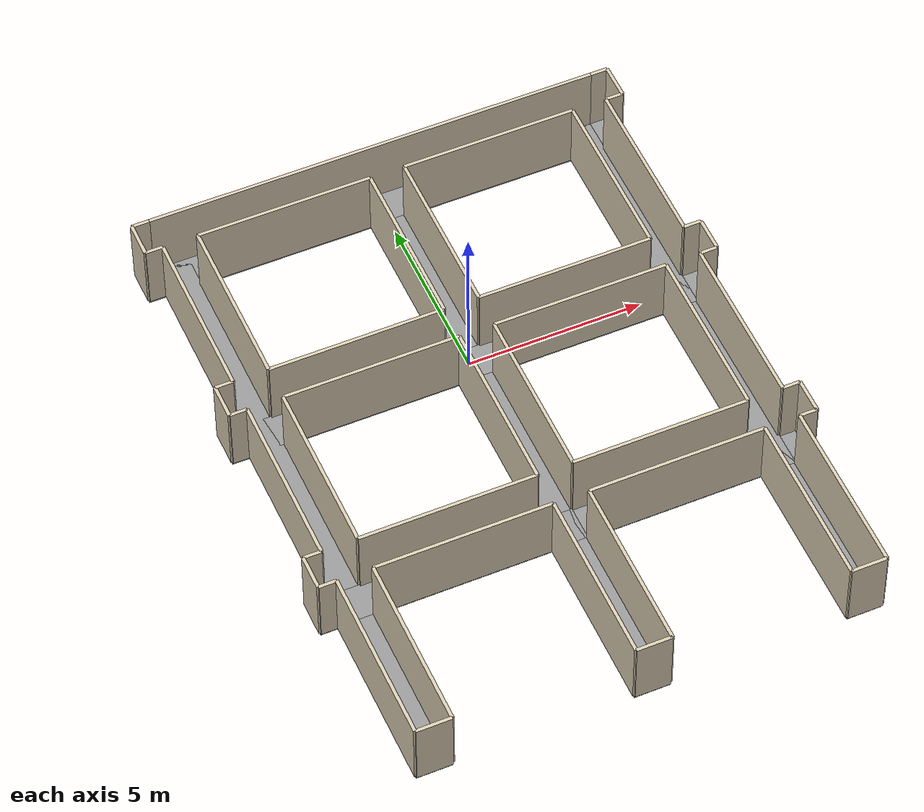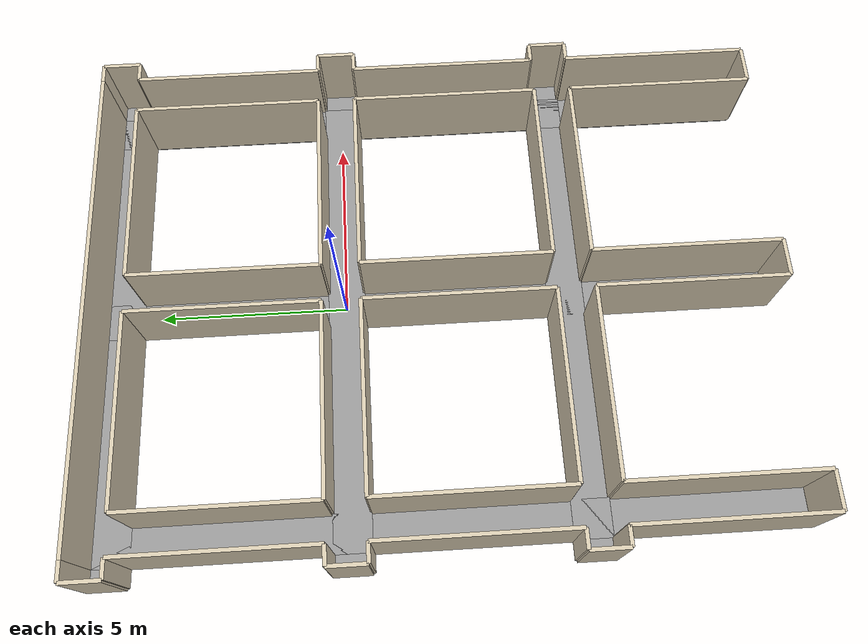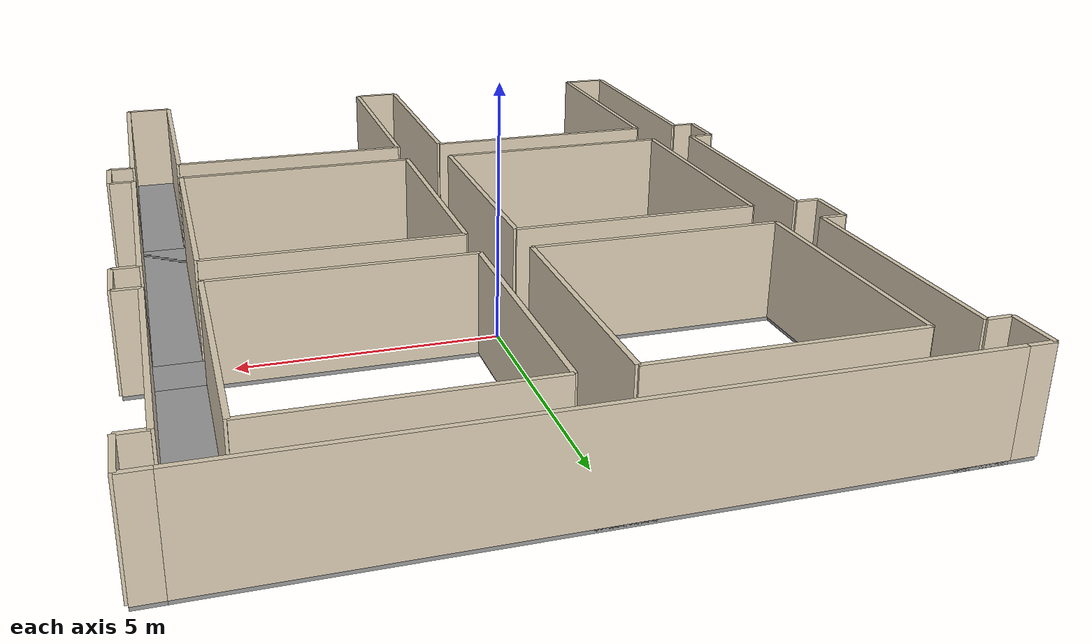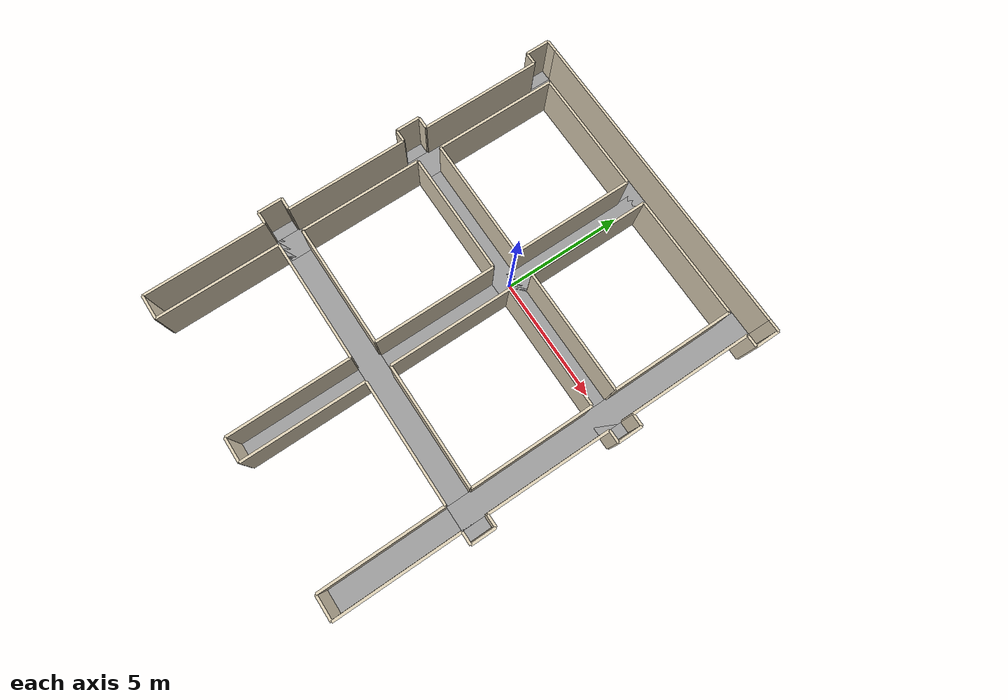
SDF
<sdf version="1.9">
 <world name="grid">
  <plugin filename="gz-sim-physics-system" name="gz::sim::systems::Physics"/>
  <plugin filename="gz-sim-sensors-system" name="gz::sim::systems::Sensors">
   <render_engine>ogre2</render_engine>
  </plugin>
  <plugin filename="gz-sim-user-commands-system" name="gz::sim::systems::UserCommands"/>
  <plugin filename="gz-sim-scene-broadcaster-system" name="gz::sim::systems::SceneBroadcaster"/>
  <gravity>0 0 -9.81</gravity>
  <physics name="1ms" type="ignored">
   <max_step_size>0.001</max_step_size>
   <real_time_factor>1.0</real_time_factor>
  </physics>
  <scene><ambient>0.6 0.6 0.6 1</ambient><background>0.7 0.7 0.8 1</background><shadows>true</shadows></scene>
  <light type="directional" name="sun">
   <pose>0 0 10 0 0 0</pose>
   <diffuse>1 1 1 1</diffuse>
   <specular>0.2 0.2 0.2 1</specular>
   <direction>-0.3 -0.3 -1</direction>
  </light>
  <model name="floor_h_bottom">
   <static>true</static>
   <pose>0 -6 -0.05 0 0 0</pose>
   <link name="link">
    <collision name="c"><geometry><box><size>13 1 0.1</size></box></geometry></collision>
    <visual name="v">
     <geometry><box><size>13 1 0.1</size></box></geometry>
     <material><ambient>0.4 0.4 0.4 1</ambient><diffuse>0.6 0.6 0.6 1</diffuse></material>
    </visual>
   </link>
  </model>
  <model name="floor_h_center">
   <static>true</static>
   <pose>0 0 -0.05 0 0 0</pose>
   <link name="link">
    <collision name="c"><geometry><box><size>13 1 0.1</size></box></geometry></collision>
    <visual name="v">
     <geometry><box><size>13 1 0.1</size></box></geometry>
     <material><ambient>0.4 0.4 0.4 1</ambient><diffuse>0.6 0.6 0.6 1</diffuse></material>
    </visual>
   </link>
  </model>
  <model name="floor_h_top">
   <static>true</static>
   <pose>0 6 -0.05 0 0 0</pose>
   <link name="link">
    <collision name="c"><geometry><box><size>13 1 0.1</size></box></geometry></collision>
    <visual name="v">
     <geometry><box><size>13 1 0.1</size></box></geometry>
     <material><ambient>0.4 0.4 0.4 1</ambient><diffuse>0.6 0.6 0.6 1</diffuse></material>
    </visual>
   </link>
  </model>
  <model name="floor_v_left">
   <static>true</static>
   <pose>-6 0 -0.05 0 0 0</pose>
   <link name="link">
    <collision name="c"><geometry><box><size>1 13 0.1</size></box></geometry></collision>
    <visual name="v">
     <geometry><box><size>1 13 0.1</size></box></geometry>
     <material><ambient>0.4 0.4 0.4 1</ambient><diffuse>0.6 0.6 0.6 1</diffuse></material>
    </visual>
   </link>
  </model>
  <model name="floor_v_center">
   <static>true</static>
   <pose>0 0 -0.05 0 0 0</pose>
   <link name="link">
    <collision name="c"><geometry><box><size>1 13 0.1</size></box></geometry></collision>
    <visual name="v">
     <geometry><box><size>1 13 0.1</size></box></geometry>
     <material><ambient>0.4 0.4 0.4 1</ambient><diffuse>0.6 0.6 0.6 1</diffuse></material>
    </visual>
   </link>
  </model>
  <model name="floor_v_right">
   <static>true</static>
   <pose>6 0 -0.05 0 0 0</pose>
   <link name="link">
    <collision name="c"><geometry><box><size>1 13 0.1</size></box></geometry></collision>
    <visual name="v">
     <geometry><box><size>1 13 0.1</size></box></geometry>
     <material><ambient>0.4 0.4 0.4 1</ambient><diffuse>0.6 0.6 0.6 1</diffuse></material>
    </visual>
   </link>
  </model>
  <model name="floor_stub_e_top">
   <static>true</static>
   <pose>6.75 6 -0.05 0 0 0</pose>
   <link name="link">
    <collision name="c"><geometry><box><size>0.5 1 0.1</size></box></geometry></collision>
    <visual name="v">
     <geometry><box><size>0.5 1 0.1</size></box></geometry>
     <material><ambient>0.4 0.4 0.4 1</ambient><diffuse>0.6 0.6 0.6 1</diffuse></material>
    </visual>
   </link>
  </model>
  <model name="floor_stub_e_mid">
   <static>true</static>
   <pose>6.75 0 -0.05 0 0 0</pose>
   <link name="link">
    <collision name="c"><geometry><box><size>0.5 1 0.1</size></box></geometry></collision>
    <visual name="v">
     <geometry><box><size>0.5 1 0.1</size></box></geometry>
     <material><ambient>0.4 0.4 0.4 1</ambient><diffuse>0.6 0.6 0.6 1</diffuse></material>
    </visual>
   </link>
  </model>
  <model name="floor_stub_e_bot">
   <static>true</static>
   <pose>6.75 -6 -0.05 0 0 0</pose>
   <link name="link">
    <collision name="c"><geometry><box><size>0.5 1 0.1</size></box></geometry></collision>
    <visual name="v">
     <geometry><box><size>0.5 1 0.1</size></box></geometry>
     <material><ambient>0.4 0.4 0.4 1</ambient><diffuse>0.6 0.6 0.6 1</diffuse></material>
    </visual>
   </link>
  </model>
  <model name="floor_stub_w_top">
   <static>true</static>
   <pose>-6.75 6 -0.05 0 0 0</pose>
   <link name="link">
    <collision name="c"><geometry><box><size>0.5 1 0.1</size></box></geometry></collision>
    <visual name="v">
     <geometry><box><size>0.5 1 0.1</size></box></geometry>
     <material><ambient>0.4 0.4 0.4 1</ambient><diffuse>0.6 0.6 0.6 1</diffuse></material>
    </visual>
   </link>
  </model>
  <model name="floor_stub_w_mid">
   <static>true</static>
   <pose>-6.75 0 -0.05 0 0 0</pose>
   <link name="link">
    <collision name="c"><geometry><box><size>0.5 1 0.1</size></box></geometry></collision>
    <visual name="v">
     <geometry><box><size>0.5 1 0.1</size></box></geometry>
     <material><ambient>0.4 0.4 0.4 1</ambient><diffuse>0.6 0.6 0.6 1</diffuse></material>
    </visual>
   </link>
  </model>
  <model name="floor_stub_w_bot">
   <static>true</static>
   <pose>-6.75 -6 -0.05 0 0 0</pose>
   <link name="link">
    <collision name="c"><geometry><box><size>0.5 1 0.1</size></box></geometry></collision>
    <visual name="v">
     <geometry><box><size>0.5 1 0.1</size></box></geometry>
     <material><ambient>0.4 0.4 0.4 1</ambient><diffuse>0.6 0.6 0.6 1</diffuse></material>
    </visual>
   </link>
  </model>
  <model name="wall_north">
   <static>true</static>
   <pose>0 6.5 1.0 0 0 0</pose>
   <link name="link">
    <collision name="c"><geometry><box><size>13 0.1 2</size></box></geometry></collision>
    <visual name="v">
     <geometry><box><size>13 0.1 2</size></box></geometry>
     <material><ambient>0.7 0.65 0.55 1</ambient><diffuse>0.85 0.8 0.7 1</diffuse></material>
    </visual>
   </link>
  </model>
  <model name="wall_south_left">
   <static>true</static>
   <pose>-3 -6.5 1.0 0 0 0</pose>
   <link name="link">
    <collision name="c"><geometry><box><size>5 0.1 2</size></box></geometry></collision>
    <visual name="v">
     <geometry><box><size>5 0.1 2</size></box></geometry>
     <material><ambient>0.7 0.65 0.55 1</ambient><diffuse>0.85 0.8 0.7 1</diffuse></material>
    </visual>
   </link>
  </model>
  <model name="wall_south_right">
   <static>true</static>
   <pose>3 -6.5 1.0 0 0 0</pose>
   <link name="link">
    <collision name="c"><geometry><box><size>5 0.1 2</size></box></geometry></collision>
    <visual name="v">
     <geometry><box><size>5 0.1 2</size></box></geometry>
     <material><ambient>0.7 0.65 0.55 1</ambient><diffuse>0.85 0.8 0.7 1</diffuse></material>
    </visual>
   </link>
  </model>
  <model name="wall_east_upper">
   <static>true</static>
   <pose>6.5 3 1.0 0 0 0</pose>
   <link name="link">
    <collision name="c"><geometry><box><size>0.1 5 2</size></box></geometry></collision>
    <visual name="v">
     <geometry><box><size>0.1 5 2</size></box></geometry>
     <material><ambient>0.7 0.65 0.55 1</ambient><diffuse>0.85 0.8 0.7 1</diffuse></material>
    </visual>
   </link>
  </model>
  <model name="wall_east_lower">
   <static>true</static>
   <pose>6.5 -3 1.0 0 0 0</pose>
   <link name="link">
    <collision name="c"><geometry><box><size>0.1 5 2</size></box></geometry></collision>
    <visual name="v">
     <geometry><box><size>0.1 5 2</size></box></geometry>
     <material><ambient>0.7 0.65 0.55 1</ambient><diffuse>0.85 0.8 0.7 1</diffuse></material>
    </visual>
   </link>
  </model>
  <model name="wall_west_upper">
   <static>true</static>
   <pose>-6.5 3 1.0 0 0 0</pose>
   <link name="link">
    <collision name="c"><geometry><box><size>0.1 5 2</size></box></geometry></collision>
    <visual name="v">
     <geometry><box><size>0.1 5 2</size></box></geometry>
     <material><ambient>0.7 0.65 0.55 1</ambient><diffuse>0.85 0.8 0.7 1</diffuse></material>
    </visual>
   </link>
  </model>
  <model name="wall_west_lower">
   <static>true</static>
   <pose>-6.5 -3 1.0 0 0 0</pose>
   <link name="link">
    <collision name="c"><geometry><box><size>0.1 5 2</size></box></geometry></collision>
    <visual name="v">
     <geometry><box><size>0.1 5 2</size></box></geometry>
     <material><ambient>0.7 0.65 0.55 1</ambient><diffuse>0.85 0.8 0.7 1</diffuse></material>
    </visual>
   </link>
  </model>
  <model name="alcove_e_top_end">
   <static>true</static>
   <pose>7 6 1.0 0 0 0</pose>
   <link name="link">
    <collision name="c"><geometry><box><size>0.1 1 2</size></box></geometry></collision>
    <visual name="v">
     <geometry><box><size>0.1 1 2</size></box></geometry>
     <material><ambient>0.7 0.65 0.55 1</ambient><diffuse>0.85 0.8 0.7 1</diffuse></material>
    </visual>
   </link>
  </model>
  <model name="alcove_e_top_n">
   <static>true</static>
   <pose>6.75 6.5 1.0 0 0 0</pose>
   <link name="link">
    <collision name="c"><geometry><box><size>0.5 0.1 2</size></box></geometry></collision>
    <visual name="v">
     <geometry><box><size>0.5 0.1 2</size></box></geometry>
     <material><ambient>0.7 0.65 0.55 1</ambient><diffuse>0.85 0.8 0.7 1</diffuse></material>
    </visual>
   </link>
  </model>
  <model name="alcove_e_top_s">
   <static>true</static>
   <pose>6.75 5.5 1.0 0 0 0</pose>
   <link name="link">
    <collision name="c"><geometry><box><size>0.5 0.1 2</size></box></geometry></collision>
    <visual name="v">
     <geometry><box><size>0.5 0.1 2</size></box></geometry>
     <material><ambient>0.7 0.65 0.55 1</ambient><diffuse>0.85 0.8 0.7 1</diffuse></material>
    </visual>
   </link>
  </model>
  <model name="alcove_e_mid_end">
   <static>true</static>
   <pose>7 0 1.0 0 0 0</pose>
   <link name="link">
    <collision name="c"><geometry><box><size>0.1 1 2</size></box></geometry></collision>
    <visual name="v">
     <geometry><box><size>0.1 1 2</size></box></geometry>
     <material><ambient>0.7 0.65 0.55 1</ambient><diffuse>0.85 0.8 0.7 1</diffuse></material>
    </visual>
   </link>
  </model>
  <model name="alcove_e_mid_n">
   <static>true</static>
   <pose>6.75 0.5 1.0 0 0 0</pose>
   <link name="link">
    <collision name="c"><geometry><box><size>0.5 0.1 2</size></box></geometry></collision>
    <visual name="v">
     <geometry><box><size>0.5 0.1 2</size></box></geometry>
     <material><ambient>0.7 0.65 0.55 1</ambient><diffuse>0.85 0.8 0.7 1</diffuse></material>
    </visual>
   </link>
  </model>
  <model name="alcove_e_mid_s">
   <static>true</static>
   <pose>6.75 -0.5 1.0 0 0 0</pose>
   <link name="link">
    <collision name="c"><geometry><box><size>0.5 0.1 2</size></box></geometry></collision>
    <visual name="v">
     <geometry><box><size>0.5 0.1 2</size></box></geometry>
     <material><ambient>0.7 0.65 0.55 1</ambient><diffuse>0.85 0.8 0.7 1</diffuse></material>
    </visual>
   </link>
  </model>
  <model name="alcove_e_bot_end">
   <static>true</static>
   <pose>7 -6 1.0 0 0 0</pose>
   <link name="link">
    <collision name="c"><geometry><box><size>0.1 1 2</size></box></geometry></collision>
    <visual name="v">
     <geometry><box><size>0.1 1 2</size></box></geometry>
     <material><ambient>0.7 0.65 0.55 1</ambient><diffuse>0.85 0.8 0.7 1</diffuse></material>
    </visual>
   </link>
  </model>
  <model name="alcove_e_bot_n">
   <static>true</static>
   <pose>6.75 -5.5 1.0 0 0 0</pose>
   <link name="link">
    <collision name="c"><geometry><box><size>0.5 0.1 2</size></box></geometry></collision>
    <visual name="v">
     <geometry><box><size>0.5 0.1 2</size></box></geometry>
     <material><ambient>0.7 0.65 0.55 1</ambient><diffuse>0.85 0.8 0.7 1</diffuse></material>
    </visual>
   </link>
  </model>
  <model name="alcove_e_bot_s">
   <static>true</static>
   <pose>6.75 -6.5 1.0 0 0 0</pose>
   <link name="link">
    <collision name="c"><geometry><box><size>0.5 0.1 2</size></box></geometry></collision>
    <visual name="v">
     <geometry><box><size>0.5 0.1 2</size></box></geometry>
     <material><ambient>0.7 0.65 0.55 1</ambient><diffuse>0.85 0.8 0.7 1</diffuse></material>
    </visual>
   </link>
  </model>
  <model name="alcove_w_top_end">
   <static>true</static>
   <pose>-7 6 1.0 0 0 0</pose>
   <link name="link">
    <collision name="c"><geometry><box><size>0.1 1 2</size></box></geometry></collision>
    <visual name="v">
     <geometry><box><size>0.1 1 2</size></box></geometry>
     <material><ambient>0.7 0.65 0.55 1</ambient><diffuse>0.85 0.8 0.7 1</diffuse></material>
    </visual>
   </link>
  </model>
  <model name="alcove_w_top_n">
   <static>true</static>
   <pose>-6.75 6.5 1.0 0 0 0</pose>
   <link name="link">
    <collision name="c"><geometry><box><size>0.5 0.1 2</size></box></geometry></collision>
    <visual name="v">
     <geometry><box><size>0.5 0.1 2</size></box></geometry>
     <material><ambient>0.7 0.65 0.55 1</ambient><diffuse>0.85 0.8 0.7 1</diffuse></material>
    </visual>
   </link>
  </model>
  <model name="alcove_w_top_s">
   <static>true</static>
   <pose>-6.75 5.5 1.0 0 0 0</pose>
   <link name="link">
    <collision name="c"><geometry><box><size>0.5 0.1 2</size></box></geometry></collision>
    <visual name="v">
     <geometry><box><size>0.5 0.1 2</size></box></geometry>
     <material><ambient>0.7 0.65 0.55 1</ambient><diffuse>0.85 0.8 0.7 1</diffuse></material>
    </visual>
   </link>
  </model>
  <model name="alcove_w_mid_end">
   <static>true</static>
   <pose>-7 0 1.0 0 0 0</pose>
   <link name="link">
    <collision name="c"><geometry><box><size>0.1 1 2</size></box></geometry></collision>
    <visual name="v">
     <geometry><box><size>0.1 1 2</size></box></geometry>
     <material><ambient>0.7 0.65 0.55 1</ambient><diffuse>0.85 0.8 0.7 1</diffuse></material>
    </visual>
   </link>
  </model>
  <model name="alcove_w_mid_n">
   <static>true</static>
   <pose>-6.75 0.5 1.0 0 0 0</pose>
   <link name="link">
    <collision name="c"><geometry><box><size>0.5 0.1 2</size></box></geometry></collision>
    <visual name="v">
     <geometry><box><size>0.5 0.1 2</size></box></geometry>
     <material><ambient>0.7 0.65 0.55 1</ambient><diffuse>0.85 0.8 0.7 1</diffuse></material>
    </visual>
   </link>
  </model>
  <model name="alcove_w_mid_s">
   <static>true</static>
   <pose>-6.75 -0.5 1.0 0 0 0</pose>
   <link name="link">
    <collision name="c"><geometry><box><size>0.5 0.1 2</size></box></geometry></collision>
    <visual name="v">
     <geometry><box><size>0.5 0.1 2</size></box></geometry>
     <material><ambient>0.7 0.65 0.55 1</ambient><diffuse>0.85 0.8 0.7 1</diffuse></material>
    </visual>
   </link>
  </model>
  <model name="alcove_w_bot_end">
   <static>true</static>
   <pose>-7 -6 1.0 0 0 0</pose>
   <link name="link">
    <collision name="c"><geometry><box><size>0.1 1 2</size></box></geometry></collision>
    <visual name="v">
     <geometry><box><size>0.1 1 2</size></box></geometry>
     <material><ambient>0.7 0.65 0.55 1</ambient><diffuse>0.85 0.8 0.7 1</diffuse></material>
    </visual>
   </link>
  </model>
  <model name="alcove_w_bot_n">
   <static>true</static>
   <pose>-6.75 -5.5 1.0 0 0 0</pose>
   <link name="link">
    <collision name="c"><geometry><box><size>0.5 0.1 2</size></box></geometry></collision>
    <visual name="v">
     <geometry><box><size>0.5 0.1 2</size></box></geometry>
     <material><ambient>0.7 0.65 0.55 1</ambient><diffuse>0.85 0.8 0.7 1</diffuse></material>
    </visual>
   </link>
  </model>
  <model name="alcove_w_bot_s">
   <static>true</static>
   <pose>-6.75 -6.5 1.0 0 0 0</pose>
   <link name="link">
    <collision name="c"><geometry><box><size>0.5 0.1 2</size></box></geometry></collision>
    <visual name="v">
     <geometry><box><size>0.5 0.1 2</size></box></geometry>
     <material><ambient>0.7 0.65 0.55 1</ambient><diffuse>0.85 0.8 0.7 1</diffuse></material>
    </visual>
   </link>
  </model>
  <model name="void_bl_w">
   <static>true</static>
   <pose>-5.5 -3 1.0 0 0 0</pose>
   <link name="link">
    <collision name="c"><geometry><box><size>0.1 5 2</size></box></geometry></collision>
    <visual name="v">
     <geometry><box><size>0.1 5 2</size></box></geometry>
     <material><ambient>0.7 0.65 0.55 1</ambient><diffuse>0.85 0.8 0.7 1</diffuse></material>
    </visual>
   </link>
  </model>
  <model name="void_bl_e">
   <static>true</static>
   <pose>-0.5 -3 1.0 0 0 0</pose>
   <link name="link">
    <collision name="c"><geometry><box><size>0.1 5 2</size></box></geometry></collision>
    <visual name="v">
     <geometry><box><size>0.1 5 2</size></box></geometry>
     <material><ambient>0.7 0.65 0.55 1</ambient><diffuse>0.85 0.8 0.7 1</diffuse></material>
    </visual>
   </link>
  </model>
  <model name="void_bl_s">
   <static>true</static>
   <pose>-3 -5.5 1.0 0 0 0</pose>
   <link name="link">
    <collision name="c"><geometry><box><size>5 0.1 2</size></box></geometry></collision>
    <visual name="v">
     <geometry><box><size>5 0.1 2</size></box></geometry>
     <material><ambient>0.7 0.65 0.55 1</ambient><diffuse>0.85 0.8 0.7 1</diffuse></material>
    </visual>
   </link>
  </model>
  <model name="void_bl_n">
   <static>true</static>
   <pose>-3 -0.5 1.0 0 0 0</pose>
   <link name="link">
    <collision name="c"><geometry><box><size>5 0.1 2</size></box></geometry></collision>
    <visual name="v">
     <geometry><box><size>5 0.1 2</size></box></geometry>
     <material><ambient>0.7 0.65 0.55 1</ambient><diffuse>0.85 0.8 0.7 1</diffuse></material>
    </visual>
   </link>
  </model>
  <model name="void_tl_w">
   <static>true</static>
   <pose>-5.5 3 1.0 0 0 0</pose>
   <link name="link">
    <collision name="c"><geometry><box><size>0.1 5 2</size></box></geometry></collision>
    <visual name="v">
     <geometry><box><size>0.1 5 2</size></box></geometry>
     <material><ambient>0.7 0.65 0.55 1</ambient><diffuse>0.85 0.8 0.7 1</diffuse></material>
    </visual>
   </link>
  </model>
  <model name="void_tl_e">
   <static>true</static>
   <pose>-0.5 3 1.0 0 0 0</pose>
   <link name="link">
    <collision name="c"><geometry><box><size>0.1 5 2</size></box></geometry></collision>
    <visual name="v">
     <geometry><box><size>0.1 5 2</size></box></geometry>
     <material><ambient>0.7 0.65 0.55 1</ambient><diffuse>0.85 0.8 0.7 1</diffuse></material>
    </visual>
   </link>
  </model>
  <model name="void_tl_s">
   <static>true</static>
   <pose>-3 0.5 1.0 0 0 0</pose>
   <link name="link">
    <collision name="c"><geometry><box><size>5 0.1 2</size></box></geometry></collision>
    <visual name="v">
     <geometry><box><size>5 0.1 2</size></box></geometry>
     <material><ambient>0.7 0.65 0.55 1</ambient><diffuse>0.85 0.8 0.7 1</diffuse></material>
    </visual>
   </link>
  </model>
  <model name="void_tl_n">
   <static>true</static>
   <pose>-3 5.5 1.0 0 0 0</pose>
   <link name="link">
    <collision name="c"><geometry><box><size>5 0.1 2</size></box></geometry></collision>
    <visual name="v">
     <geometry><box><size>5 0.1 2</size></box></geometry>
     <material><ambient>0.7 0.65 0.55 1</ambient><diffuse>0.85 0.8 0.7 1</diffuse></material>
    </visual>
   </link>
  </model>
  <model name="void_br_w">
   <static>true</static>
   <pose>0.5 -3 1.0 0 0 0</pose>
   <link name="link">
    <collision name="c"><geometry><box><size>0.1 5 2</size></box></geometry></collision>
    <visual name="v">
     <geometry><box><size>0.1 5 2</size></box></geometry>
     <material><ambient>0.7 0.65 0.55 1</ambient><diffuse>0.85 0.8 0.7 1</diffuse></material>
    </visual>
   </link>
  </model>
  <model name="void_br_e">
   <static>true</static>
   <pose>5.5 -3 1.0 0 0 0</pose>
   <link name="link">
    <collision name="c"><geometry><box><size>0.1 5 2</size></box></geometry></collision>
    <visual name="v">
     <geometry><box><size>0.1 5 2</size></box></geometry>
     <material><ambient>0.7 0.65 0.55 1</ambient><diffuse>0.85 0.8 0.7 1</diffuse></material>
    </visual>
   </link>
  </model>
  <model name="void_br_s">
   <static>true</static>
   <pose>3 -5.5 1.0 0 0 0</pose>
   <link name="link">
    <collision name="c"><geometry><box><size>5 0.1 2</size></box></geometry></collision>
    <visual name="v">
     <geometry><box><size>5 0.1 2</size></box></geometry>
     <material><ambient>0.7 0.65 0.55 1</ambient><diffuse>0.85 0.8 0.7 1</diffuse></material>
    </visual>
   </link>
  </model>
  <model name="void_br_n">
   <static>true</static>
   <pose>3 -0.5 1.0 0 0 0</pose>
   <link name="link">
    <collision name="c"><geometry><box><size>5 0.1 2</size></box></geometry></collision>
    <visual name="v">
     <geometry><box><size>5 0.1 2</size></box></geometry>
     <material><ambient>0.7 0.65 0.55 1</ambient><diffuse>0.85 0.8 0.7 1</diffuse></material>
    </visual>
   </link>
  </model>
  <model name="void_tr_w">
   <static>true</static>
   <pose>0.5 3 1.0 0 0 0</pose>
   <link name="link">
    <collision name="c"><geometry><box><size>0.1 5 2</size></box></geometry></collision>
    <visual name="v">
     <geometry><box><size>0.1 5 2</size></box></geometry>
     <material><ambient>0.7 0.65 0.55 1</ambient><diffuse>0.85 0.8 0.7 1</diffuse></material>
    </visual>
   </link>
  </model>
  <model name="void_tr_e">
   <static>true</static>
   <pose>5.5 3 1.0 0 0 0</pose>
   <link name="link">
    <collision name="c"><geometry><box><size>0.1 5 2</size></box></geometry></collision>
    <visual name="v">
     <geometry><box><size>0.1 5 2</size></box></geometry>
     <material><ambient>0.7 0.65 0.55 1</ambient><diffuse>0.85 0.8 0.7 1</diffuse></material>
    </visual>
   </link>
  </model>
  <model name="void_tr_s">
   <static>true</static>
   <pose>3 0.5 1.0 0 0 0</pose>
   <link name="link">
    <collision name="c"><geometry><box><size>5 0.1 2</size></box></geometry></collision>
    <visual name="v">
     <geometry><box><size>5 0.1 2</size></box></geometry>
     <material><ambient>0.7 0.65 0.55 1</ambient><diffuse>0.85 0.8 0.7 1</diffuse></material>
    </visual>
   </link>
  </model>
  <model name="void_tr_n">
   <static>true</static>
   <pose>3 5.5 1.0 0 0 0</pose>
   <link name="link">
    <collision name="c"><geometry><box><size>5 0.1 2</size></box></geometry></collision>
    <visual name="v">
     <geometry><box><size>5 0.1 2</size></box></geometry>
     <material><ambient>0.7 0.65 0.55 1</ambient><diffuse>0.85 0.8 0.7 1</diffuse></material>
    </visual>
   </link>
  </model>
  <model name="stub_s_left_floor">
   <static>true</static>
   <pose>-6 -9 -0.05 0 0 0</pose>
   <link name="link">
    <collision name="c"><geometry><box><size>1 5 0.1</size></box></geometry></collision>
    <visual name="v">
     <geometry><box><size>1 5 0.1</size></box></geometry>
     <material><ambient>0.4 0.4 0.4 1</ambient><diffuse>0.6 0.6 0.6 1</diffuse></material>
    </visual>
   </link>
  </model>
  <model name="stub_s_left_end">
   <static>true</static>
   <pose>-6 -11.5 1.0 0 0 0</pose>
   <link name="link">
    <collision name="c"><geometry><box><size>1 0.1 2</size></box></geometry></collision>
    <visual name="v">
     <geometry><box><size>1 0.1 2</size></box></geometry>
     <material><ambient>0.7 0.65 0.55 1</ambient><diffuse>0.85 0.8 0.7 1</diffuse></material>
    </visual>
   </link>
  </model>
  <model name="stub_s_left_w">
   <static>true</static>
   <pose>-6.5 -9 1.0 0 0 0</pose>
   <link name="link">
    <collision name="c"><geometry><box><size>0.1 5 2</size></box></geometry></collision>
    <visual name="v">
     <geometry><box><size>0.1 5 2</size></box></geometry>
     <material><ambient>0.7 0.65 0.55 1</ambient><diffuse>0.85 0.8 0.7 1</diffuse></material>
    </visual>
   </link>
  </model>
  <model name="stub_s_left_e">
   <static>true</static>
   <pose>-5.5 -9 1.0 0 0 0</pose>
   <link name="link">
    <collision name="c"><geometry><box><size>0.1 5 2</size></box></geometry></collision>
    <visual name="v">
     <geometry><box><size>0.1 5 2</size></box></geometry>
     <material><ambient>0.7 0.65 0.55 1</ambient><diffuse>0.85 0.8 0.7 1</diffuse></material>
    </visual>
   </link>
  </model>
  <model name="stub_s_mid_floor">
   <static>true</static>
   <pose>0 -9 -0.05 0 0 0</pose>
   <link name="link">
    <collision name="c"><geometry><box><size>1 5 0.1</size></box></geometry></collision>
    <visual name="v">
     <geometry><box><size>1 5 0.1</size></box></geometry>
     <material><ambient>0.4 0.4 0.4 1</ambient><diffuse>0.6 0.6 0.6 1</diffuse></material>
    </visual>
   </link>
  </model>
  <model name="stub_s_mid_end">
   <static>true</static>
   <pose>0 -11.5 1.0 0 0 0</pose>
   <link name="link">
    <collision name="c"><geometry><box><size>1 0.1 2</size></box></geometry></collision>
    <visual name="v">
     <geometry><box><size>1 0.1 2</size></box></geometry>
     <material><ambient>0.7 0.65 0.55 1</ambient><diffuse>0.85 0.8 0.7 1</diffuse></material>
    </visual>
   </link>
  </model>
  <model name="stub_s_mid_w">
   <static>true</static>
   <pose>-0.5 -9 1.0 0 0 0</pose>
   <link name="link">
    <collision name="c"><geometry><box><size>0.1 5 2</size></box></geometry></collision>
    <visual name="v">
     <geometry><box><size>0.1 5 2</size></box></geometry>
     <material><ambient>0.7 0.65 0.55 1</ambient><diffuse>0.85 0.8 0.7 1</diffuse></material>
    </visual>
   </link>
  </model>
  <model name="stub_s_mid_e">
   <static>true</static>
   <pose>0.5 -9 1.0 0 0 0</pose>
   <link name="link">
    <collision name="c"><geometry><box><size>0.1 5 2</size></box></geometry></collision>
    <visual name="v">
     <geometry><box><size>0.1 5 2</size></box></geometry>
     <material><ambient>0.7 0.65 0.55 1</ambient><diffuse>0.85 0.8 0.7 1</diffuse></material>
    </visual>
   </link>
  </model>
  <model name="stub_s_right_floor">
   <static>true</static>
   <pose>6 -9 -0.05 0 0 0</pose>
   <link name="link">
    <collision name="c"><geometry><box><size>1 5 0.1</size></box></geometry></collision>
    <visual name="v">
     <geometry><box><size>1 5 0.1</size></box></geometry>
     <material><ambient>0.4 0.4 0.4 1</ambient><diffuse>0.6 0.6 0.6 1</diffuse></material>
    </visual>
   </link>
  </model>
  <model name="stub_s_right_end">
   <static>true</static>
   <pose>6 -11.5 1.0 0 0 0</pose>
   <link name="link">
    <collision name="c"><geometry><box><size>1 0.1 2</size></box></geometry></collision>
    <visual name="v">
     <geometry><box><size>1 0.1 2</size></box></geometry>
     <material><ambient>0.7 0.65 0.55 1</ambient><diffuse>0.85 0.8 0.7 1</diffuse></material>
    </visual>
   </link>
  </model>
  <model name="stub_s_right_w">
   <static>true</static>
   <pose>5.5 -9 1.0 0 0 0</pose>
   <link name="link">
    <collision name="c"><geometry><box><size>0.1 5 2</size></box></geometry></collision>
    <visual name="v">
     <geometry><box><size>0.1 5 2</size></box></geometry>
     <material><ambient>0.7 0.65 0.55 1</ambient><diffuse>0.85 0.8 0.7 1</diffuse></material>
    </visual>
   </link>
  </model>
  <model name="stub_s_right_e">
   <static>true</static>
   <pose>6.5 -9 1.0 0 0 0</pose>
   <link name="link">
    <collision name="c"><geometry><box><size>0.1 5 2</size></box></geometry></collision>
    <visual name="v">
     <geometry><box><size>0.1 5 2</size></box></geometry>
     <material><ambient>0.7 0.65 0.55 1</ambient><diffuse>0.85 0.8 0.7 1</diffuse></material>
    </visual>
   </link>
  </model>
 </world>
</sdf>
